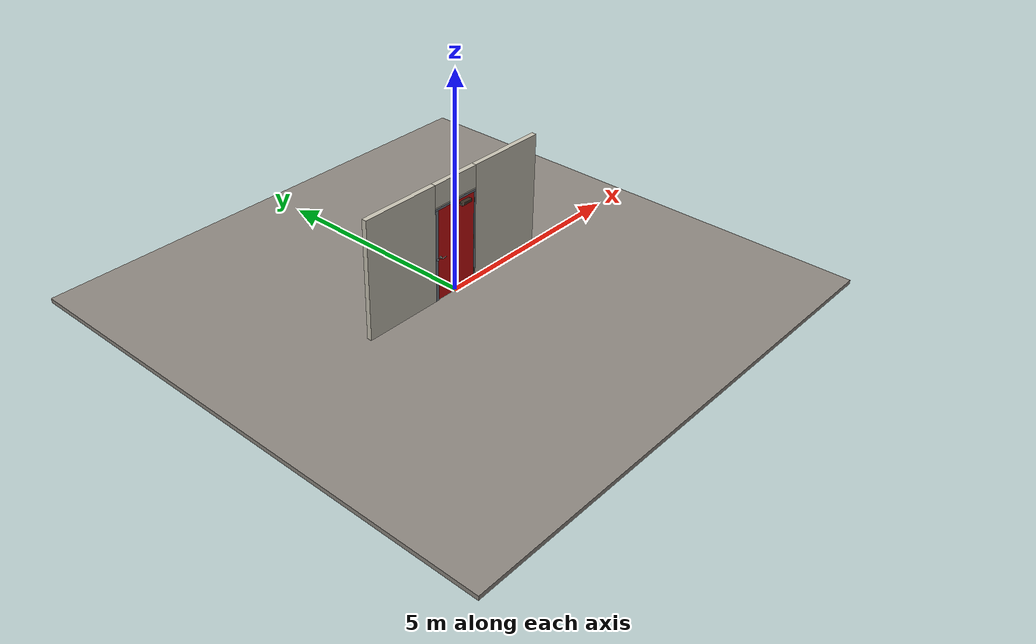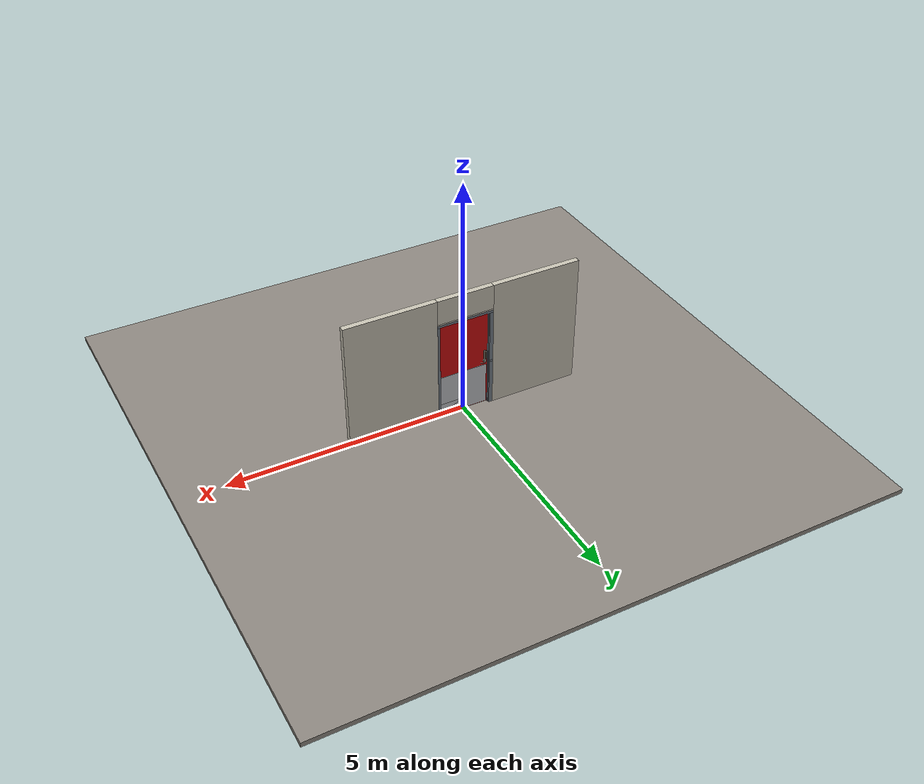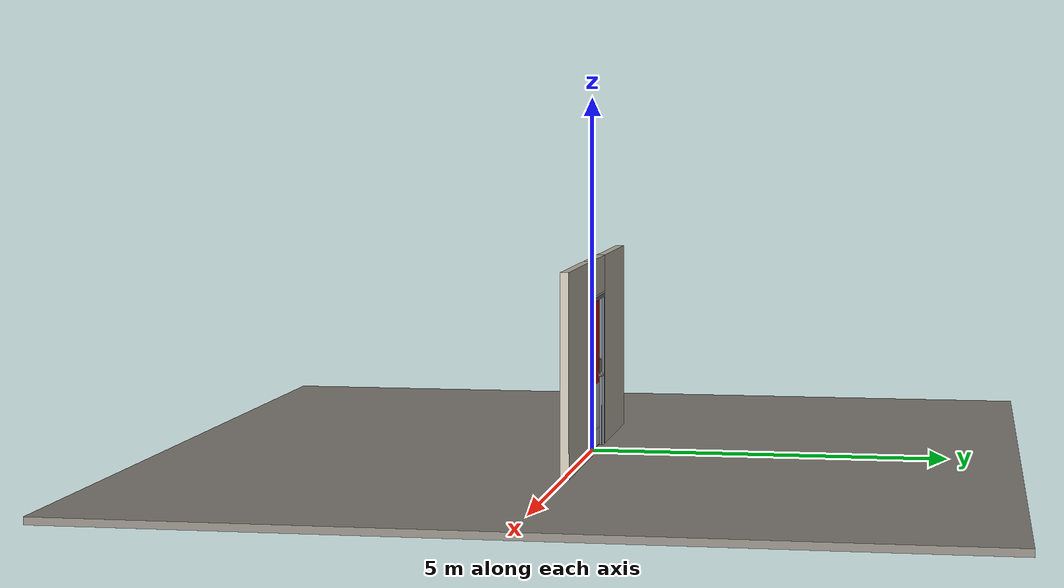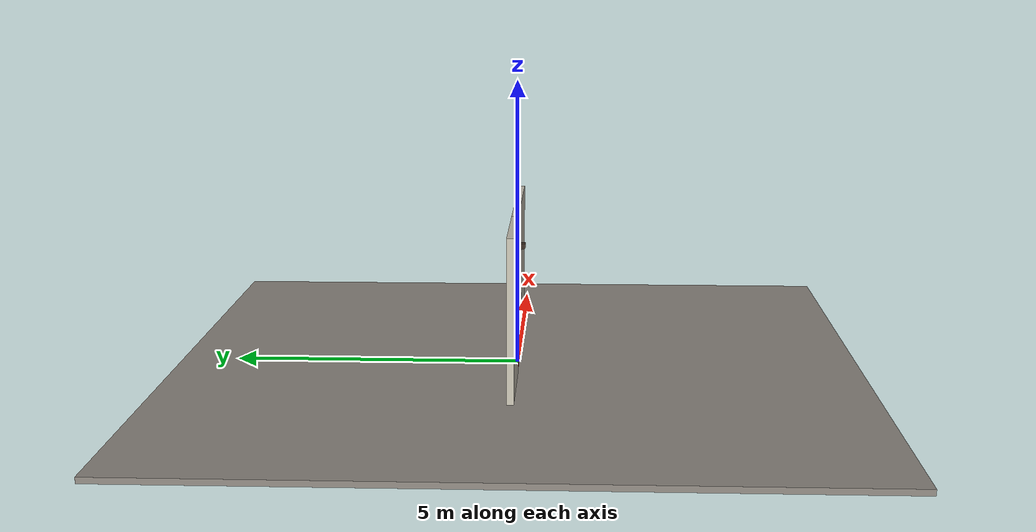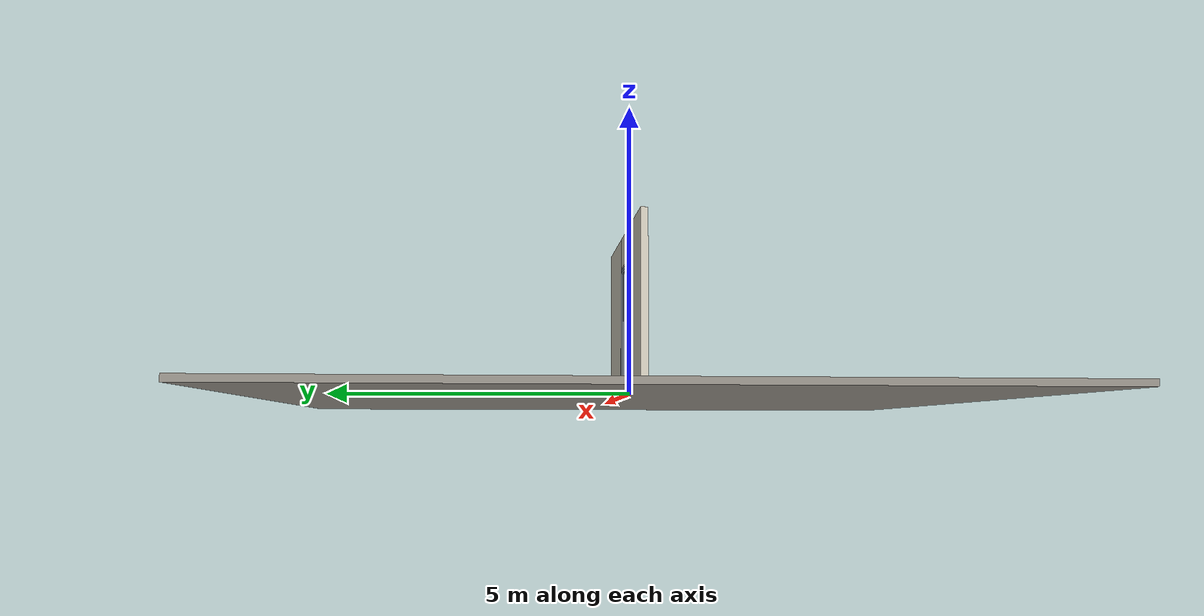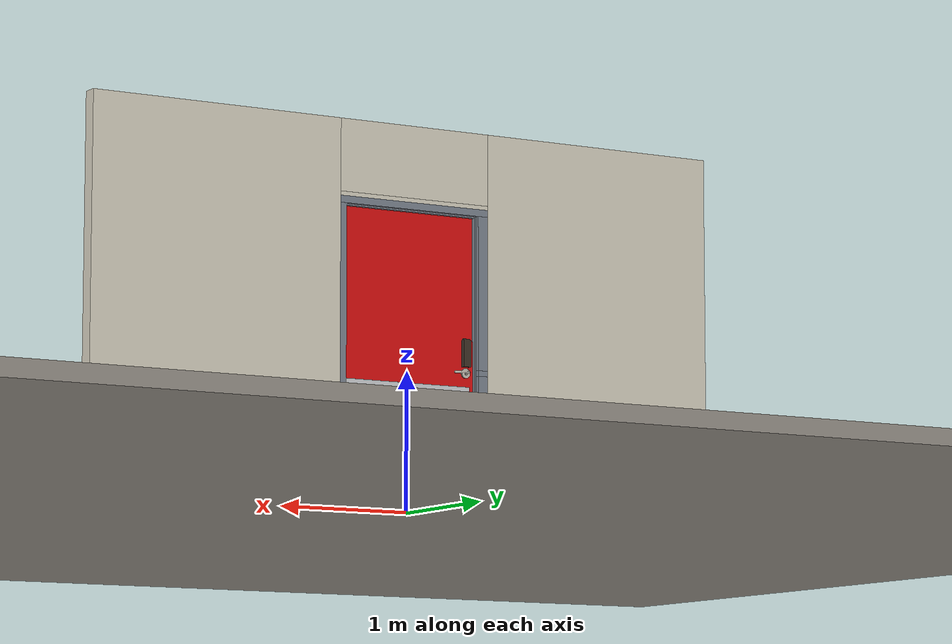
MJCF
<?xml version="1.0" ?>
<mujoco model="db0264_swing_single_simple">
  <compiler angle="radian" meshdir="../../hardware" texturedir="../../textures" autolimits="true" inertiafromgeom="false"/>
  <option timestep="0.002" integrator="implicitfast" cone="elliptic" impratio="10" noslip_iterations="3">
    <flag multiccd="enable"/>
  </option>
  <size memory="16M"/>
  <default>
    <geom condim="4" solref="0.005 1" solimp="0.95 0.99 0.001"/>
    <joint solreflimit="0.005 1" solimplimit="0.95 0.99 0.001"/>
    <tendon solreflimit="0.005 1"/>
    <equality solref="0.002 1"/>
  </default>
  <visual>
    <headlight ambient="0.4 0.4 0.4" diffuse="0.7 0.7 0.7" specular="0.2 0.2 0.2"/>
    <quality shadowsize="4096"/>
    <map znear="0.01" zfar="60"/>
  </visual>
  <asset>
    <mesh name="closer_body_fdc4667657" file="closer_body_fdc4667657.obj"/>
    <mesh name="hinge_e22b26c0c1" file="hinge_e22b26c0c1.obj"/>
    <mesh name="hinge_jamb_e1d088f8dc" file="hinge_jamb_e1d088f8dc.obj"/>
    <mesh name="keypad_body_91eb8ded3e" file="keypad_body_91eb8ded3e.obj"/>
    <mesh name="lever_a61139b160" file="lever_a61139b160.obj"/>
    <material name="mat_floor" rgba="0.55 0.53 0.5 1" specular="0.2" shininess="0.15" reflectance="0"/>
    <material name="mat_wall" rgba="0.78 0.76 0.7 1" specular="0.2" shininess="0.1" reflectance="0"/>
    <material name="mat_leaf" rgba="0.8 0.05 0.05 1" specular="0.23" shininess="0.36" reflectance="0.02"/>
    <material name="mat_hinge" rgba="0.45 0.3 0.22 1" specular="0.5" shininess="0.1" reflectance="0.2"/>
    <material name="mat_op_nickel_satin" rgba="0.72 0.7 0.66 1" specular="0.8" shininess="0.65" reflectance="0.4"/>
    <material name="mat_trim" rgba="0.85 0.66 0.3 1" specular="0.8" shininess="0.75" reflectance="0.4"/>
    <material name="mat_keypad" rgba="0.22 0.17 0.13 1" specular="0.8" shininess="0.6" reflectance="0.4"/>
    <material name="mat_key" rgba="0.85 0.85 0.82 1" specular="0.2" shininess="0.5" reflectance="0"/>
    <material name="mat_bolt" rgba="0.75 0.76 0.77 1" specular="0.8" shininess="0.65" reflectance="0.4"/>
    <material name="mat_frame" rgba="0.45 0.48 0.52 1" specular="0.32" shininess="0.6" reflectance="0.08"/>
    <material name="mat_closer" rgba="0.22 0.17 0.13 1" specular="0.8" shininess="0.6" reflectance="0.4"/>
    <material name="mat_kick" rgba="0.75 0.76 0.77 1" specular="0.8" shininess="0.65" reflectance="0.4"/>
    <texture name="skybox" type="skybox" builtin="gradient" rgb1="0.6 0.7 0.85" rgb2="0.9 0.92 0.95" width="256" height="256"/>
  </asset>
  <worldbody>
    <light name="sun" pos="1.5 -2.5 4" dir="-0.3 0.5 -0.8" directional="true" diffuse="0.8 0.8 0.8" specular="0.3 0.3 0.3" castshadow="true"/>
    <light name="fill" pos="-1.5 2.5 3" dir="0.3 -0.5 -0.7" directional="true" diffuse="0.35 0.35 0.4" castshadow="false"/>
    <camera name="robot_view" pos="0 -2.609312 1.812087" xyaxes="1 0 0 0 0.26963 0.962964" fovy="52"/>
    <camera name="far_view" pos="0 2.666313 1.812087" xyaxes="-1 0 0 0 -0.26963 0.962964" fovy="52"/>
    <camera name="iso" pos="-2.004737 -2.187262 2.234138" xyaxes="0.741536 -0.670913 0 0.242917 0.268487 0.932151" fovy="46"/>
    <camera name="detail_handle" pos="-0.1984 -0.877 1.296" xyaxes="0.97561 0.219512 0 -0.070934 0.315262 0.94635" fovy="38"/>
    <geom name="floor" type="box" size="6 6 0.05" pos="0 0 -0.05" material="mat_floor" group="0" contype="1" conaffinity="1" friction="0.8 0.005 0.0001" density="2400"/>
    <geom name="wall_left" type="box" size="0.9415 0.0575 1.3735" pos="-1.5585 0.0285 1.3735" material="mat_wall" group="0" contype="1" conaffinity="1" friction="0.6 0.005 0.0001" density="800"/>
    <geom name="wall_right" type="box" size="0.9565 0.0575 1.3735" pos="1.5435 0.0285 1.3735" material="mat_wall" group="0" contype="1" conaffinity="1" friction="0.6 0.005 0.0001" density="800"/>
    <geom name="wall_header" type="box" size="0.602 0.0575 0.26" pos="-0.015 0.0285 2.487" material="mat_wall" group="0" contype="1" conaffinity="1" friction="0.6 0.005 0.0001" density="800"/>
    <geom name="hinge_0_jamb" type="mesh" mesh="hinge_jamb_e1d088f8dc" pos="0.534 -0.029 0.259" quat="0 0 1 0" material="mat_hinge" group="1" contype="0" conaffinity="0" density="7850"/>
    <geom name="hinge_1_jamb" type="mesh" mesh="hinge_jamb_e1d088f8dc" pos="0.534 -0.029 1.076" quat="0 0 1 0" material="mat_hinge" group="1" contype="0" conaffinity="0" density="7850"/>
    <geom name="hinge_2_jamb" type="mesh" mesh="hinge_jamb_e1d088f8dc" pos="0.534 -0.029 1.963" quat="0 0 1 0" material="mat_hinge" group="1" contype="0" conaffinity="0" density="7850"/>
    <geom name="jamb_hinge" type="box" size="0.025 0.0575 1.0735" pos="0.562 0.0285 1.0735" material="mat_frame" group="0" contype="1" conaffinity="1" friction="0.6 0.005 0.0001" density="300"/>
    <geom name="strike_1016_wall_n" type="box" size="0.04 0.0375 0.02" pos="-0.577 0.0485 1.016" material="mat_frame" group="0" contype="1" conaffinity="1" friction="0.6 0.005 0.0001" density="300"/>
    <geom name="strike_1016_wall_p" type="box" size="0.04 0.008 0.02" pos="-0.577 -0.019 1.016" material="mat_frame" group="0" contype="1" conaffinity="1" friction="0.6 0.005 0.0001" density="300"/>
    <geom name="strike_1016_ramp" type="box" size="0.04 0.018028 0.02" pos="-0.580282 -0.019812 1.016" quat="0.957092 0 0 -0.289784" material="mat_frame" group="0" contype="1" conaffinity="1" friction="0.12 0.005 0.0001" density="300"/>
    <geom name="strike_1016_back" type="box" size="0.0285 0.011 0.02" pos="-0.5885 0 1.016" material="mat_frame" group="0" contype="1" conaffinity="1" friction="0.6 0.005 0.0001" density="300"/>
    <geom name="jamb_strike_0" type="box" size="0.04 0.0575 0.498" pos="-0.577 0.0285 0.498" material="mat_frame" group="0" contype="1" conaffinity="1" friction="0.6 0.005 0.0001" density="300"/>
    <geom name="jamb_strike_1" type="box" size="0.04 0.0575 0.5555" pos="-0.577 0.0285 1.5915" material="mat_frame" group="0" contype="1" conaffinity="1" friction="0.6 0.005 0.0001" density="300"/>
    <geom name="jamb_head" type="box" size="0.602 0.0575 0.025" pos="-0.015 0.0285 2.172" material="mat_frame" group="0" contype="1" conaffinity="1" friction="0.6 0.005 0.0001" density="300"/>
    <geom name="head_stud" type="box" size="0.602 0.0575 0.015" pos="-0.015 0.0285 2.212" material="mat_wall" group="0" contype="1" conaffinity="1" friction="0.6 0.005 0.0001" density="500"/>
    <geom name="stop_hinge" type="box" size="0.0055 0.016 1.0735" pos="0.5315 0.0385 1.0735" material="mat_frame" group="0" contype="1" conaffinity="1" friction="0.6 0.005 0.0001" density="300"/>
    <geom name="stop_strike" type="box" size="0.0055 0.016 1.0735" pos="-0.5315 0.0385 1.0735" material="mat_frame" group="0" contype="1" conaffinity="1" friction="0.6 0.005 0.0001" density="300"/>
    <geom name="stop_head" type="box" size="0.537 0.016 0.0055" pos="0 0.0385 2.1415" material="mat_frame" group="0" contype="1" conaffinity="1" friction="0.6 0.005 0.0001" density="300"/>
    <site name="approach_point" pos="0 -1.5 0" quat="1 0 0 0" size="0.05" rgba="0.2 0.9 0.2 0.5" group="4"/>
    <site name="goal_point" pos="0 1.5 0" quat="1 0 0 0" size="0.05" rgba="0.2 0.9 0.2 0.5" group="4"/>
    <site name="door_plane_center" pos="0 0 1.0735" quat="1 0 0 0" size="0.02" rgba="0.2 0.9 0.2 0.5" group="4"/>
    <body name="leaf" pos="0.537 0 0">
      <inertial pos="-0.495633 -0.008233 1.128381" mass="68.154272" quat="0.465209 0.488744 0.524027 -0.519716" diaginertia="5.866542159 34.3036052 40.070823706"/>
      <joint name="leaf_hinge" type="hinge" axis="0 0 1" pos="-0.003 -0.029 0" limited="true" range="0 1.745329" damping="12.49954" frictionloss="8.134149" stiffness="15.673579" springref="-1.79155" armature="0.02"/>
      <geom name="leaf_slab" type="box" size="0.5335 0.022 1.067" pos="-0.5365 0 1.076" material="mat_leaf" group="0" contype="1" conaffinity="1" friction="0.4 0.005 0.0001" density="1"/>
      <geom name="hinge_0" type="mesh" mesh="hinge_e22b26c0c1" pos="-0.003 -0.029 0.259" quat="0 0 1 0" material="mat_hinge" group="1" contype="0" conaffinity="0" density="7850"/>
      <geom name="hinge_1" type="mesh" mesh="hinge_e22b26c0c1" pos="-0.003 -0.029 1.076" quat="0 0 1 0" material="mat_hinge" group="1" contype="0" conaffinity="0" density="7850"/>
      <geom name="hinge_2" type="mesh" mesh="hinge_e22b26c0c1" pos="-0.003 -0.029 1.963" quat="0 0 1 0" material="mat_hinge" group="1" contype="0" conaffinity="0" density="7850"/>
      <geom name="leaf_keypad_body" type="mesh" mesh="keypad_body_91eb8ded3e" pos="-1.005 0.022 1.156" quat="0 0 0.707107 0.707107" material="mat_keypad" group="0" contype="1" conaffinity="1" friction="0.6 0.005 0.0001" density="2000"/>
      <geom name="closer_body" type="mesh" mesh="closer_body_fdc4667657" pos="-0.3 -0.022 2.054" quat="0 0 -0.707107 0.707107" material="mat_closer" group="1" contype="0" conaffinity="0" density="2000"/>
      <geom name="closer_body_col" type="box" size="0.145 0.05 0.035" pos="-0.3 -0.072 2.054" material="mat_closer" group="3" contype="1" conaffinity="1" rgba="0.8 0.3 0.3 0.25" friction="0.6 0.005 0.0001" density="2000"/>
      <geom name="kick_plate_p" type="box" size="0.5035 0.0008 0.125" pos="-0.5365 0.0228 0.144" material="mat_kick" group="2" contype="0" conaffinity="0" density="7900"/>
      <geom name="armor_plate" type="box" size="0.5035 0.0008 0.45" pos="-0.5365 0.0228 0.469" material="mat_kick" group="2" contype="0" conaffinity="0" density="7900"/>
      <site name="leaf_edge_mid" pos="-1.07 0 1.067" quat="1 0 0 0" size="0.02" rgba="0.2 0.9 0.2 0.5" group="4"/>
      <body name="leaf_handle" pos="-1.005 0 1.016">
        <inertial pos="0.025007 -0.057273 0" mass="0.41" quat="0.235955 0 0 0.971764" diaginertia="0.000156759 0.000717302 0.000791484"/>
        <joint name="leaf_handle_hinge" type="hinge" axis="0 1 0" limited="true" range="0 0.87" damping="0.208392" frictionloss="0.052" stiffness="1" springref="-0.35" armature="0.01"/>
        <geom name="leaf_handle_lever_n" type="mesh" mesh="lever_a61139b160" pos="0 -0.022 0" quat="0 0 -0.707107 0.707107" material="mat_op_nickel_satin" group="1" contype="0" conaffinity="0" density="3000"/>
        <geom name="leaf_handle_lever_col_n" type="capsule" size="0.008 0.048" pos="0.056 -0.077 0" quat="0.707107 0 0.707107 0" material="mat_op_nickel_satin" group="3" contype="1" conaffinity="1" rgba="0.8 0.3 0.3 0.25" friction="0.7 0.01 0.0001" density="3000"/>
        <geom name="leaf_handle_hub_col_n" type="cylinder" size="0.012 0.022" pos="0 -0.052 0" quat="0.707107 -0.707107 0 0" material="mat_op_nickel_satin" group="3" contype="1" conaffinity="1" rgba="0.8 0.3 0.3 0.25" friction="0.6 0.005 0.0001" density="3000"/>
        <site name="leaf_handle_grip_n" pos="0.0896 -0.077 0" quat="1 0 0 0" size="0.012" rgba="0.2 0.9 0.2 0.5" group="4"/>
      </body>
      <body name="leaf_handle_out" pos="-1.005 0 1.016">
        <inertial pos="0.025007 0.057273 0" mass="0.41" quat="-0.235955 0 0 0.971764" diaginertia="0.000156759 0.000717302 0.000791484"/>
        <joint name="leaf_handle_out_hinge" type="hinge" axis="0 1 0" limited="true" range="0 0.09" damping="0.208382" frictionloss="0.052" stiffness="1" springref="-0.35" armature="0.01"/>
        <geom name="leaf_handle_out_lever_p" type="mesh" mesh="lever_a61139b160" pos="0 0.022 0" quat="0 0 0.707107 0.707107" material="mat_op_nickel_satin" group="1" contype="0" conaffinity="0" density="3000"/>
        <geom name="leaf_handle_out_lever_col_p" type="capsule" size="0.008 0.048" pos="0.056 0.077 0" quat="0.707107 0 0.707107 0" material="mat_op_nickel_satin" group="3" contype="1" conaffinity="1" rgba="0.8 0.3 0.3 0.25" friction="0.7 0.01 0.0001" density="3000"/>
        <geom name="leaf_handle_out_hub_col_p" type="cylinder" size="0.012 0.022" pos="0 0.052 0" quat="0.707107 -0.707107 0 0" material="mat_op_nickel_satin" group="3" contype="1" conaffinity="1" rgba="0.8 0.3 0.3 0.25" friction="0.6 0.005 0.0001" density="3000"/>
        <site name="leaf_handle_out_grip_p" pos="0.0896 0.077 0" quat="1 0 0 0" size="0.012" rgba="0.2 0.9 0.2 0.5" group="4"/>
      </body>
      <body name="leaf_latch_bolt" pos="-1.07 0 1.016">
        <inertial pos="0.0055 0 0" mass="0.102826" quat="0.92388 0.382683 0 0" diaginertia="0.000004365 0.000018287 0.000018287"/>
        <joint name="leaf_latch_bolt_slide" type="slide" axis="1 0 0" limited="true" range="0 0.019" damping="2" frictionloss="0.3" stiffness="800" springref="-0.01" armature="0.1"/>
        <geom name="leaf_latch_bolt_capsule" type="capsule" size="0.0095 0.015" pos="0.0055 0 0" quat="0.707107 0 -0.707107 0" material="mat_bolt" group="0" contype="1" conaffinity="1" friction="0.2 0.005 0.0001" density="8500"/>
      </body>
    </body>
  </worldbody>
  <tendon>
    <fixed name="leaf_latch_bolt_coupling" limited="true" range="0 10">
      <joint joint="leaf_latch_bolt_slide" coef="1"/>
      <joint joint="leaf_handle_hinge" coef="-0.023457"/>
      <joint joint="leaf_handle_out_hinge" coef="-0.023457"/>
    </fixed>
  </tendon>
  <sensor>
    <jointpos name="leaf_hinge_pos" joint="leaf_hinge"/>
    <jointvel name="leaf_hinge_vel" joint="leaf_hinge"/>
    <jointpos name="leaf_handle_hinge_pos" joint="leaf_handle_hinge"/>
    <jointvel name="leaf_handle_hinge_vel" joint="leaf_handle_hinge"/>
    <jointpos name="leaf_handle_out_hinge_pos" joint="leaf_handle_out_hinge"/>
    <jointvel name="leaf_handle_out_hinge_vel" joint="leaf_handle_out_hinge"/>
    <jointpos name="leaf_latch_bolt_slide_pos" joint="leaf_latch_bolt_slide"/>
    <jointvel name="leaf_latch_bolt_slide_vel" joint="leaf_latch_bolt_slide"/>
  </sensor>
</mujoco>
